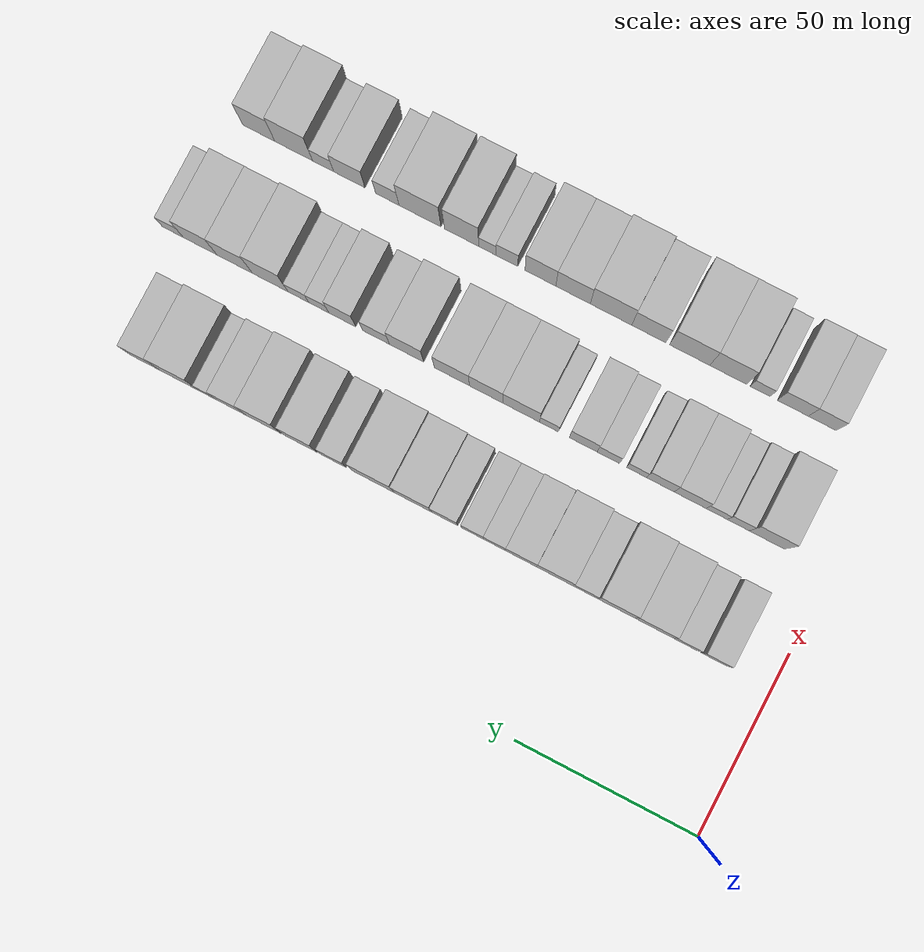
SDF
<sdf version="1.6">
 <world name="default">
  <model name="building_40">
   <static>1</static>
   <pose>50.0000 15.9786 0 0.000000 0.000000 0.000000</pose>
   <link name="link">
    <pose>0 0 7.50 0 0 0</pose>
    <collision name="collision"><geometry><box><size>20.0000 7.0775 15.0000</size></box></geometry></collision>
    <visual name="visual">
     <cast_shadows>0</cast_shadows>
     <geometry><box><size>20.0000 7.0775 15.0000</size></box></geometry>
     <material>
      <script>
       <uri>model://HANNAS_wall/materials/scripts</uri>
       <uri>model://HANNAS_wall/materials/textures</uri>
       <name>vrc/HANNAS_wall</name>
      </script>
     </material>
    </visual>
   </link>
  </model>
  <model name="building_41">
   <static>1</static>
   <pose>50.0000 24.0389 0 0.000000 0.000000 0.000000</pose>
   <link name="link">
    <pose>0 0 7.50 0 0 0</pose>
    <collision name="collision"><geometry><box><size>20.0000 7.0430 15.0000</size></box></geometry></collision>
    <visual name="visual">
     <cast_shadows>0</cast_shadows>
     <geometry><box><size>20.0000 7.0430 15.0000</size></box></geometry>
     <material>
      <script>
       <uri>model://HANNAS_wall/materials/scripts</uri>
       <uri>model://HANNAS_wall/materials/textures</uri>
       <name>vrc/HANNAS_wall</name>
      </script>
     </material>
    </visual>
   </link>
  </model>
  <model name="building_42">
   <static>1</static>
   <pose>50.0000 32.7854 0 0.000000 0.000000 0.000000</pose>
   <link name="link">
    <pose>0 0 10.50 0 0 0</pose>
    <collision name="collision"><geometry><box><size>20.0000 10.4501 21.0000</size></box></geometry></collision>
    <visual name="visual">
     <cast_shadows>0</cast_shadows>
     <geometry><box><size>20.0000 10.4501 21.0000</size></box></geometry>
     <material>
      <script>
       <uri>model://HANNAS_wall/materials/scripts</uri>
       <uri>model://HANNAS_wall/materials/textures</uri>
       <name>vrc/HANNAS_wall</name>
      </script>
     </material>
    </visual>
   </link>
  </model>
  <model name="building_43">
   <static>1</static>
   <pose>50.0000 43.0834 0 0.000000 0.000000 0.000000</pose>
   <link name="link">
    <pose>0 0 12.00 0 0 0</pose>
    <collision name="collision"><geometry><box><size>20.0000 10.1457 24.0000</size></box></geometry></collision>
    <visual name="visual">
     <cast_shadows>0</cast_shadows>
     <geometry><box><size>20.0000 10.1457 24.0000</size></box></geometry>
     <material>
      <script>
       <uri>model://HANNAS_wall/materials/scripts</uri>
       <uri>model://HANNAS_wall/materials/textures</uri>
       <name>vrc/HANNAS_wall</name>
      </script>
     </material>
    </visual>
   </link>
  </model>
  <model name="building_44">
   <static>1</static>
   <pose>50.0000 51.5074 0 0.000000 0.000000 0.000000</pose>
   <link name="link">
    <pose>0 0 7.50 0 0 0</pose>
    <collision name="collision"><geometry><box><size>20.0000 6.7023 15.0000</size></box></geometry></collision>
    <visual name="visual">
     <cast_shadows>0</cast_shadows>
     <geometry><box><size>20.0000 6.7023 15.0000</size></box></geometry>
     <material>
      <script>
       <uri>model://HANNAS_wall/materials/scripts</uri>
       <uri>model://HANNAS_wall/materials/textures</uri>
       <name>vrc/HANNAS_wall</name>
      </script>
     </material>
    </visual>
   </link>
  </model>
  <model name="building_45">
   <static>1</static>
   <pose>50.0000 59.8590 0 0.000000 0.000000 0.000000</pose>
   <link name="link">
    <pose>0 0 10.50 0 0 0</pose>
    <collision name="collision"><geometry><box><size>20.0000 10.0010 21.0000</size></box></geometry></collision>
    <visual name="visual">
     <cast_shadows>0</cast_shadows>
     <geometry><box><size>20.0000 10.0010 21.0000</size></box></geometry>
     <material>
      <script>
       <uri>model://HANNAS_wall/materials/scripts</uri>
       <uri>model://HANNAS_wall/materials/textures</uri>
       <name>vrc/HANNAS_wall</name>
      </script>
     </material>
    </visual>
   </link>
  </model>
  <model name="building_46">
   <static>1</static>
   <pose>50.0000 69.1309 0 0.000000 0.000000 0.000000</pose>
   <link name="link">
    <pose>0 0 9.00 0 0 0</pose>
    <collision name="collision"><geometry><box><size>20.0000 8.5427 18.0000</size></box></geometry></collision>
    <visual name="visual">
     <cast_shadows>0</cast_shadows>
     <geometry><box><size>20.0000 8.5427 18.0000</size></box></geometry>
     <material>
      <script>
       <uri>model://HANNAS_wall/materials/scripts</uri>
       <uri>model://HANNAS_wall/materials/textures</uri>
       <name>vrc/HANNAS_wall</name>
      </script>
     </material>
    </visual>
   </link>
  </model>
  <model name="building_47">
   <static>1</static>
   <pose>50.0000 76.4442 0 0.000000 0.000000 0.000000</pose>
   <link name="link">
    <pose>0 0 7.50 0 0 0</pose>
    <collision name="collision"><geometry><box><size>20.0000 6.0840 15.0000</size></box></geometry></collision>
    <visual name="visual">
     <cast_shadows>0</cast_shadows>
     <geometry><box><size>20.0000 6.0840 15.0000</size></box></geometry>
     <material>
      <script>
       <uri>model://HANNAS_wall/materials/scripts</uri>
       <uri>model://HANNAS_wall/materials/textures</uri>
       <name>vrc/HANNAS_wall</name>
      </script>
     </material>
    </visual>
   </link>
  </model>
  <model name="building_48">
   <static>1</static>
   <pose>50.0000 82.5288 0 0.000000 0.000000 0.000000</pose>
   <link name="link">
    <pose>0 0 7.50 0 0 0</pose>
    <collision name="collision"><geometry><box><size>20.0000 6.0853 15.0000</size></box></geometry></collision>
    <visual name="visual">
     <cast_shadows>0</cast_shadows>
     <geometry><box><size>20.0000 6.0853 15.0000</size></box></geometry>
     <material>
      <script>
       <uri>model://HANNAS_wall/materials/scripts</uri>
       <uri>model://HANNAS_wall/materials/textures</uri>
       <name>vrc/HANNAS_wall</name>
      </script>
     </material>
    </visual>
   </link>
  </model>
  <model name="building_49">
   <static>1</static>
   <pose>50.0000 90.2138 0 0.000000 0.000000 0.000000</pose>
   <link name="link">
    <pose>0 0 9.00 0 0 0</pose>
    <collision name="collision"><geometry><box><size>20.0000 7.2847 18.0000</size></box></geometry></collision>
    <visual name="visual">
     <cast_shadows>0</cast_shadows>
     <geometry><box><size>20.0000 7.2847 18.0000</size></box></geometry>
     <material>
      <script>
       <uri>model://HANNAS_wall/materials/scripts</uri>
       <uri>model://HANNAS_wall/materials/textures</uri>
       <name>vrc/HANNAS_wall</name>
      </script>
     </material>
    </visual>
   </link>
  </model>
  <model name="building_50">
   <static>1</static>
   <pose>50.0000 99.0568 0 0.000000 0.000000 0.000000</pose>
   <link name="link">
    <pose>0 0 10.50 0 0 0</pose>
    <collision name="collision"><geometry><box><size>20.0000 10.4013 21.0000</size></box></geometry></collision>
    <visual name="visual">
     <cast_shadows>0</cast_shadows>
     <geometry><box><size>20.0000 10.4013 21.0000</size></box></geometry>
     <material>
      <script>
       <uri>model://HANNAS_wall/materials/scripts</uri>
       <uri>model://HANNAS_wall/materials/textures</uri>
       <name>vrc/HANNAS_wall</name>
      </script>
     </material>
    </visual>
   </link>
  </model>
  <model name="building_51">
   <static>1</static>
   <pose>50.0000 109.9423 0 0.000000 0.000000 0.000000</pose>
   <link name="link">
    <pose>0 0 12.00 0 0 0</pose>
    <collision name="collision"><geometry><box><size>20.0000 11.3697 24.0000</size></box></geometry></collision>
    <visual name="visual">
     <cast_shadows>0</cast_shadows>
     <geometry><box><size>20.0000 11.3697 24.0000</size></box></geometry>
     <material>
      <script>
       <uri>model://HANNAS_wall/materials/scripts</uri>
       <uri>model://HANNAS_wall/materials/textures</uri>
       <name>vrc/HANNAS_wall</name>
      </script>
     </material>
    </visual>
   </link>
  </model>
  <model name="building_52">
   <static>1</static>
   <pose>50.0000 121.1510 0 0.000000 0.000000 0.000000</pose>
   <link name="link">
    <pose>0 0 7.50 0 0 0</pose>
    <collision name="collision"><geometry><box><size>20.0000 7.0476 15.0000</size></box></geometry></collision>
    <visual name="visual">
     <cast_shadows>0</cast_shadows>
     <geometry><box><size>20.0000 7.0476 15.0000</size></box></geometry>
     <material>
      <script>
       <uri>model://HANNAS_wall/materials/scripts</uri>
       <uri>model://HANNAS_wall/materials/textures</uri>
       <name>vrc/HANNAS_wall</name>
      </script>
     </material>
    </visual>
   </link>
  </model>
  <model name="building_53">
   <static>1</static>
   <pose>50.0000 130.2038 0 0.000000 0.000000 0.000000</pose>
   <link name="link">
    <pose>0 0 10.50 0 0 0</pose>
    <collision name="collision"><geometry><box><size>20.0000 9.0579 21.0000</size></box></geometry></collision>
    <visual name="visual">
     <cast_shadows>0</cast_shadows>
     <geometry><box><size>20.0000 9.0579 21.0000</size></box></geometry>
     <material>
      <script>
       <uri>model://HANNAS_wall/materials/scripts</uri>
       <uri>model://HANNAS_wall/materials/textures</uri>
       <name>vrc/HANNAS_wall</name>
      </script>
     </material>
    </visual>
   </link>
  </model>
  <model name="building_54">
   <static>1</static>
   <pose>50.0000 140.5833 0 0.000000 0.000000 0.000000</pose>
   <link name="link">
    <pose>0 0 12.00 0 0 0</pose>
    <collision name="collision"><geometry><box><size>20.0000 9.7012 24.0000</size></box></geometry></collision>
    <visual name="visual">
     <cast_shadows>0</cast_shadows>
     <geometry><box><size>20.0000 9.7012 24.0000</size></box></geometry>
     <material>
      <script>
       <uri>model://HANNAS_wall/materials/scripts</uri>
       <uri>model://HANNAS_wall/materials/textures</uri>
       <name>vrc/HANNAS_wall</name>
      </script>
     </material>
    </visual>
   </link>
  </model>
  <model name="building_55">
   <static>1</static>
   <pose>50.0000 149.6270 0 0.000000 0.000000 0.000000</pose>
   <link name="link">
    <pose>0 0 9.00 0 0 0</pose>
    <collision name="collision"><geometry><box><size>20.0000 8.3863 18.0000</size></box></geometry></collision>
    <visual name="visual">
     <cast_shadows>0</cast_shadows>
     <geometry><box><size>20.0000 8.3863 18.0000</size></box></geometry>
     <material>
      <script>
       <uri>model://HANNAS_wall/materials/scripts</uri>
       <uri>model://HANNAS_wall/materials/textures</uri>
       <name>vrc/HANNAS_wall</name>
      </script>
     </material>
    </visual>
   </link>
  </model>
  <model name="building_56">
   <static>1</static>
   <pose>50.0000 156.2234 0 0.000000 0.000000 0.000000</pose>
   <link name="link">
    <pose>0 0 6.00 0 0 0</pose>
    <collision name="collision"><geometry><box><size>20.0000 4.8064 12.0000</size></box></geometry></collision>
    <visual name="visual">
     <cast_shadows>0</cast_shadows>
     <geometry><box><size>20.0000 4.8064 12.0000</size></box></geometry>
     <material>
      <script>
       <uri>model://HANNAS_wall/materials/scripts</uri>
       <uri>model://HANNAS_wall/materials/textures</uri>
       <name>vrc/HANNAS_wall</name>
      </script>
     </material>
    </visual>
   </link>
  </model>
  <model name="building_57">
   <static>1</static>
   <pose>50.0000 164.1182 0 0.000000 0.000000 0.000000</pose>
   <link name="link">
    <pose>0 0 12.00 0 0 0</pose>
    <collision name="collision"><geometry><box><size>20.0000 10.9832 24.0000</size></box></geometry></collision>
    <visual name="visual">
     <cast_shadows>0</cast_shadows>
     <geometry><box><size>20.0000 10.9832 24.0000</size></box></geometry>
     <material>
      <script>
       <uri>model://HANNAS_wall/materials/scripts</uri>
       <uri>model://HANNAS_wall/materials/textures</uri>
       <name>vrc/HANNAS_wall</name>
      </script>
     </material>
    </visual>
   </link>
  </model>
  <model name="building_58">
   <static>1</static>
   <pose>50.0000 173.8157 0 0.000000 0.000000 0.000000</pose>
   <link name="link">
    <pose>0 0 9.00 0 0 0</pose>
    <collision name="collision"><geometry><box><size>20.0000 8.4117 18.0000</size></box></geometry></collision>
    <visual name="visual">
     <cast_shadows>0</cast_shadows>
     <geometry><box><size>20.0000 8.4117 18.0000</size></box></geometry>
     <material>
      <script>
       <uri>model://HANNAS_wall/materials/scripts</uri>
       <uri>model://HANNAS_wall/materials/textures</uri>
       <name>vrc/HANNAS_wall</name>
      </script>
     </material>
    </visual>
   </link>
  </model>
  <model name="building_121">
   <static>1</static>
   <pose>82.0000 17.7134 0 0.000000 0.000000 0.000000</pose>
   <link name="link">
    <pose>0 0 12.00 0 0 0</pose>
    <collision name="collision"><geometry><box><size>20.0000 9.7628 24.0000</size></box></geometry></collision>
    <visual name="visual">
     <cast_shadows>0</cast_shadows>
     <geometry><box><size>20.0000 9.7628 24.0000</size></box></geometry>
     <material>
      <script>
       <uri>model://HANNAS_wall/materials/scripts</uri>
       <uri>model://HANNAS_wall/materials/textures</uri>
       <name>vrc/HANNAS_wall</name>
      </script>
     </material>
    </visual>
   </link>
  </model>
  <model name="building_122">
   <static>1</static>
   <pose>82.0000 25.6150 0 0.000000 0.000000 0.000000</pose>
   <link name="link">
    <pose>0 0 7.50 0 0 0</pose>
    <collision name="collision"><geometry><box><size>20.0000 6.0403 15.0000</size></box></geometry></collision>
    <visual name="visual">
     <cast_shadows>0</cast_shadows>
     <geometry><box><size>20.0000 6.0403 15.0000</size></box></geometry>
     <material>
      <script>
       <uri>model://HANNAS_wall/materials/scripts</uri>
       <uri>model://HANNAS_wall/materials/textures</uri>
       <name>vrc/HANNAS_wall</name>
      </script>
     </material>
    </visual>
   </link>
  </model>
  <model name="building_123">
   <static>1</static>
   <pose>82.0000 31.5662 0 0.000000 0.000000 0.000000</pose>
   <link name="link">
    <pose>0 0 6.00 0 0 0</pose>
    <collision name="collision"><geometry><box><size>20.0000 5.8620 12.0000</size></box></geometry></collision>
    <visual name="visual">
     <cast_shadows>0</cast_shadows>
     <geometry><box><size>20.0000 5.8620 12.0000</size></box></geometry>
     <material>
      <script>
       <uri>model://HANNAS_wall/materials/scripts</uri>
       <uri>model://HANNAS_wall/materials/textures</uri>
       <name>vrc/HANNAS_wall</name>
      </script>
     </material>
    </visual>
   </link>
  </model>
  <model name="building_124">
   <static>1</static>
   <pose>82.0000 38.8936 0 0.000000 0.000000 0.000000</pose>
   <link name="link">
    <pose>0 0 9.00 0 0 0</pose>
    <collision name="collision"><geometry><box><size>20.0000 8.7928 18.0000</size></box></geometry></collision>
    <visual name="visual">
     <cast_shadows>0</cast_shadows>
     <geometry><box><size>20.0000 8.7928 18.0000</size></box></geometry>
     <material>
      <script>
       <uri>model://HANNAS_wall/materials/scripts</uri>
       <uri>model://HANNAS_wall/materials/textures</uri>
       <name>vrc/HANNAS_wall</name>
      </script>
     </material>
    </visual>
   </link>
  </model>
  <model name="building_125">
   <static>1</static>
   <pose>82.0000 47.0900 0 0.000000 0.000000 0.000000</pose>
   <link name="link">
    <pose>0 0 9.00 0 0 0</pose>
    <collision name="collision"><geometry><box><size>20.0000 7.5999 18.0000</size></box></geometry></collision>
    <visual name="visual">
     <cast_shadows>0</cast_shadows>
     <geometry><box><size>20.0000 7.5999 18.0000</size></box></geometry>
     <material>
      <script>
       <uri>model://HANNAS_wall/materials/scripts</uri>
       <uri>model://HANNAS_wall/materials/textures</uri>
       <name>vrc/HANNAS_wall</name>
      </script>
     </material>
    </visual>
   </link>
  </model>
  <model name="building_126">
   <static>1</static>
   <pose>82.0000 53.6481 0 0.000000 0.000000 0.000000</pose>
   <link name="link">
    <pose>0 0 6.00 0 0 0</pose>
    <collision name="collision"><geometry><box><size>20.0000 5.5164 12.0000</size></box></geometry></collision>
    <visual name="visual">
     <cast_shadows>0</cast_shadows>
     <geometry><box><size>20.0000 5.5164 12.0000</size></box></geometry>
     <material>
      <script>
       <uri>model://HANNAS_wall/materials/scripts</uri>
       <uri>model://HANNAS_wall/materials/textures</uri>
       <name>vrc/HANNAS_wall</name>
      </script>
     </material>
    </visual>
   </link>
  </model>
  <model name="building_127">
   <static>1</static>
   <pose>82.0000 61.5068 0 0.000000 0.000000 0.000000</pose>
   <link name="link">
    <pose>0 0 7.50 0 0 0</pose>
    <collision name="collision"><geometry><box><size>20.0000 6.2010 15.0000</size></box></geometry></collision>
    <visual name="visual">
     <cast_shadows>0</cast_shadows>
     <geometry><box><size>20.0000 6.2010 15.0000</size></box></geometry>
     <material>
      <script>
       <uri>model://HANNAS_wall/materials/scripts</uri>
       <uri>model://HANNAS_wall/materials/textures</uri>
       <name>vrc/HANNAS_wall</name>
      </script>
     </material>
    </visual>
   </link>
  </model>
  <model name="building_128">
   <static>1</static>
   <pose>82.0000 68.4631 0 0.000000 0.000000 0.000000</pose>
   <link name="link">
    <pose>0 0 9.00 0 0 0</pose>
    <collision name="collision"><geometry><box><size>20.0000 7.7116 18.0000</size></box></geometry></collision>
    <visual name="visual">
     <cast_shadows>0</cast_shadows>
     <geometry><box><size>20.0000 7.7116 18.0000</size></box></geometry>
     <material>
      <script>
       <uri>model://HANNAS_wall/materials/scripts</uri>
       <uri>model://HANNAS_wall/materials/textures</uri>
       <name>vrc/HANNAS_wall</name>
      </script>
     </material>
    </visual>
   </link>
  </model>
  <model name="building_129">
   <static>1</static>
   <pose>82.0000 77.9608 0 0.000000 0.000000 0.000000</pose>
   <link name="link">
    <pose>0 0 6.00 0 0 0</pose>
    <collision name="collision"><geometry><box><size>20.0000 5.2838 12.0000</size></box></geometry></collision>
    <visual name="visual">
     <cast_shadows>0</cast_shadows>
     <geometry><box><size>20.0000 5.2838 12.0000</size></box></geometry>
     <material>
      <script>
       <uri>model://HANNAS_wall/materials/scripts</uri>
       <uri>model://HANNAS_wall/materials/textures</uri>
       <name>vrc/HANNAS_wall</name>
      </script>
     </material>
    </visual>
   </link>
  </model>
  <model name="building_130">
   <static>1</static>
   <pose>82.0000 85.7401 0 0.000000 0.000000 0.000000</pose>
   <link name="link">
    <pose>0 0 10.50 0 0 0</pose>
    <collision name="collision"><geometry><box><size>20.0000 10.2748 21.0000</size></box></geometry></collision>
    <visual name="visual">
     <cast_shadows>0</cast_shadows>
     <geometry><box><size>20.0000 10.2748 21.0000</size></box></geometry>
     <material>
      <script>
       <uri>model://HANNAS_wall/materials/scripts</uri>
       <uri>model://HANNAS_wall/materials/textures</uri>
       <name>vrc/HANNAS_wall</name>
      </script>
     </material>
    </visual>
   </link>
  </model>
  <model name="building_131">
   <static>1</static>
   <pose>82.0000 95.4748 0 0.000000 0.000000 0.000000</pose>
   <link name="link">
    <pose>0 0 10.50 0 0 0</pose>
    <collision name="collision"><geometry><box><size>20.0000 9.1946 21.0000</size></box></geometry></collision>
    <visual name="visual">
     <cast_shadows>0</cast_shadows>
     <geometry><box><size>20.0000 9.1946 21.0000</size></box></geometry>
     <material>
      <script>
       <uri>model://HANNAS_wall/materials/scripts</uri>
       <uri>model://HANNAS_wall/materials/textures</uri>
       <name>vrc/HANNAS_wall</name>
      </script>
     </material>
    </visual>
   </link>
  </model>
  <model name="building_132">
   <static>1</static>
   <pose>82.0000 104.9715 0 0.000000 0.000000 0.000000</pose>
   <link name="link">
    <pose>0 0 10.50 0 0 0</pose>
    <collision name="collision"><geometry><box><size>20.0000 9.7989 21.0000</size></box></geometry></collision>
    <visual name="visual">
     <cast_shadows>0</cast_shadows>
     <geometry><box><size>20.0000 9.7989 21.0000</size></box></geometry>
     <material>
      <script>
       <uri>model://HANNAS_wall/materials/scripts</uri>
       <uri>model://HANNAS_wall/materials/textures</uri>
       <name>vrc/HANNAS_wall</name>
      </script>
     </material>
    </visual>
   </link>
  </model>
  <model name="building_133">
   <static>1</static>
   <pose>82.0000 117.6457 0 0.000000 0.000000 0.000000</pose>
   <link name="link">
    <pose>0 0 10.50 0 0 0</pose>
    <collision name="collision"><geometry><box><size>20.0000 9.5496 21.0000</size></box></geometry></collision>
    <visual name="visual">
     <cast_shadows>0</cast_shadows>
     <geometry><box><size>20.0000 9.5496 21.0000</size></box></geometry>
     <material>
      <script>
       <uri>model://HANNAS_wall/materials/scripts</uri>
       <uri>model://HANNAS_wall/materials/textures</uri>
       <name>vrc/HANNAS_wall</name>
      </script>
     </material>
    </visual>
   </link>
  </model>
  <model name="building_134">
   <static>1</static>
   <pose>82.0000 126.1476 0 0.000000 0.000000 0.000000</pose>
   <link name="link">
    <pose>0 0 7.50 0 0 0</pose>
    <collision name="collision"><geometry><box><size>20.0000 7.4542 15.0000</size></box></geometry></collision>
    <visual name="visual">
     <cast_shadows>0</cast_shadows>
     <geometry><box><size>20.0000 7.4542 15.0000</size></box></geometry>
     <material>
      <script>
       <uri>model://HANNAS_wall/materials/scripts</uri>
       <uri>model://HANNAS_wall/materials/textures</uri>
       <name>vrc/HANNAS_wall</name>
      </script>
     </material>
    </visual>
   </link>
  </model>
  <model name="building_135">
   <static>1</static>
   <pose>82.0000 135.6404 0 0.000000 0.000000 0.000000</pose>
   <link name="link">
    <pose>0 0 9.00 0 0 0</pose>
    <collision name="collision"><geometry><box><size>20.0000 7.5313 18.0000</size></box></geometry></collision>
    <visual name="visual">
     <cast_shadows>0</cast_shadows>
     <geometry><box><size>20.0000 7.5313 18.0000</size></box></geometry>
     <material>
      <script>
       <uri>model://HANNAS_wall/materials/scripts</uri>
       <uri>model://HANNAS_wall/materials/textures</uri>
       <name>vrc/HANNAS_wall</name>
      </script>
     </material>
    </visual>
   </link>
  </model>
  <model name="building_136">
   <static>1</static>
   <pose>82.0000 142.2441 0 0.000000 0.000000 0.000000</pose>
   <link name="link">
    <pose>0 0 6.00 0 0 0</pose>
    <collision name="collision"><geometry><box><size>20.0000 5.6762 12.0000</size></box></geometry></collision>
    <visual name="visual">
     <cast_shadows>0</cast_shadows>
     <geometry><box><size>20.0000 5.6762 12.0000</size></box></geometry>
     <material>
      <script>
       <uri>model://HANNAS_wall/materials/scripts</uri>
       <uri>model://HANNAS_wall/materials/textures</uri>
       <name>vrc/HANNAS_wall</name>
      </script>
     </material>
    </visual>
   </link>
  </model>
  <model name="building_137">
   <static>1</static>
   <pose>82.0000 147.9988 0 0.000000 0.000000 0.000000</pose>
   <link name="link">
    <pose>0 0 6.00 0 0 0</pose>
    <collision name="collision"><geometry><box><size>20.0000 5.8333 12.0000</size></box></geometry></collision>
    <visual name="visual">
     <cast_shadows>0</cast_shadows>
     <geometry><box><size>20.0000 5.8333 12.0000</size></box></geometry>
     <material>
      <script>
       <uri>model://HANNAS_wall/materials/scripts</uri>
       <uri>model://HANNAS_wall/materials/textures</uri>
       <name>vrc/HANNAS_wall</name>
      </script>
     </material>
    </visual>
   </link>
  </model>
  <model name="building_138">
   <static>1</static>
   <pose>82.0000 155.9293 0 0.000000 0.000000 0.000000</pose>
   <link name="link">
    <pose>0 0 12.00 0 0 0</pose>
    <collision name="collision"><geometry><box><size>20.0000 10.0276 24.0000</size></box></geometry></collision>
    <visual name="visual">
     <cast_shadows>0</cast_shadows>
     <geometry><box><size>20.0000 10.0276 24.0000</size></box></geometry>
     <material>
      <script>
       <uri>model://HANNAS_wall/materials/scripts</uri>
       <uri>model://HANNAS_wall/materials/textures</uri>
       <name>vrc/HANNAS_wall</name>
      </script>
     </material>
    </visual>
   </link>
  </model>
  <model name="building_139">
   <static>1</static>
   <pose>82.0000 165.9415 0 0.000000 0.000000 0.000000</pose>
   <link name="link">
    <pose>0 0 10.50 0 0 0</pose>
    <collision name="collision"><geometry><box><size>20.0000 9.9969 21.0000</size></box></geometry></collision>
    <visual name="visual">
     <cast_shadows>0</cast_shadows>
     <geometry><box><size>20.0000 9.9969 21.0000</size></box></geometry>
     <material>
      <script>
       <uri>model://HANNAS_wall/materials/scripts</uri>
       <uri>model://HANNAS_wall/materials/textures</uri>
       <name>vrc/HANNAS_wall</name>
      </script>
     </material>
    </visual>
   </link>
  </model>
  <model name="building_140">
   <static>1</static>
   <pose>82.0000 175.6808 0 0.000000 0.000000 0.000000</pose>
   <link name="link">
    <pose>0 0 10.50 0 0 0</pose>
    <collision name="collision"><geometry><box><size>20.0000 9.4818 21.0000</size></box></geometry></collision>
    <visual name="visual">
     <cast_shadows>0</cast_shadows>
     <geometry><box><size>20.0000 9.4818 21.0000</size></box></geometry>
     <material>
      <script>
       <uri>model://HANNAS_wall/materials/scripts</uri>
       <uri>model://HANNAS_wall/materials/textures</uri>
       <name>vrc/HANNAS_wall</name>
      </script>
     </material>
    </visual>
   </link>
  </model>
  <model name="building_141">
   <static>1</static>
   <pose>82.0000 183.4076 0 0.000000 0.000000 0.000000</pose>
   <link name="link">
    <pose>0 0 6.00 0 0 0</pose>
    <collision name="collision"><geometry><box><size>20.0000 5.9719 12.0000</size></box></geometry></collision>
    <visual name="visual">
     <cast_shadows>0</cast_shadows>
     <geometry><box><size>20.0000 5.9719 12.0000</size></box></geometry>
     <material>
      <script>
       <uri>model://HANNAS_wall/materials/scripts</uri>
       <uri>model://HANNAS_wall/materials/textures</uri>
       <name>vrc/HANNAS_wall</name>
      </script>
     </material>
    </visual>
   </link>
  </model>
  <model name="building_195">
   <static>1</static>
   <pose>114.0000 18.5535 0 0.000000 0.000000 0.000000</pose>
   <link name="link">
    <pose>0 0 9.00 0 0 0</pose>
    <collision name="collision"><geometry><box><size>20.0000 7.6872 18.0000</size></box></geometry></collision>
    <visual name="visual">
     <cast_shadows>0</cast_shadows>
     <geometry><box><size>20.0000 7.6872 18.0000</size></box></geometry>
     <material>
      <script>
       <uri>model://HANNAS_wall/materials/scripts</uri>
       <uri>model://HANNAS_wall/materials/textures</uri>
       <name>vrc/HANNAS_wall</name>
      </script>
     </material>
    </visual>
   </link>
  </model>
  <model name="building_196">
   <static>1</static>
   <pose>114.0000 26.6757 0 0.000000 0.000000 0.000000</pose>
   <link name="link">
    <pose>0 0 9.00 0 0 0</pose>
    <collision name="collision"><geometry><box><size>20.0000 8.5570 18.0000</size></box></geometry></collision>
    <visual name="visual">
     <cast_shadows>0</cast_shadows>
     <geometry><box><size>20.0000 8.5570 18.0000</size></box></geometry>
     <material>
      <script>
       <uri>model://HANNAS_wall/materials/scripts</uri>
       <uri>model://HANNAS_wall/materials/textures</uri>
       <name>vrc/HANNAS_wall</name>
      </script>
     </material>
    </visual>
   </link>
  </model>
  <model name="building_197">
   <static>1</static>
   <pose>114.0000 35.7107 0 0.000000 0.000000 0.000000</pose>
   <link name="link">
    <pose>0 0 6.00 0 0 0</pose>
    <collision name="collision"><geometry><box><size>20.0000 5.5129 12.0000</size></box></geometry></collision>
    <visual name="visual">
     <cast_shadows>0</cast_shadows>
     <geometry><box><size>20.0000 5.5129 12.0000</size></box></geometry>
     <material>
      <script>
       <uri>model://HANNAS_wall/materials/scripts</uri>
       <uri>model://HANNAS_wall/materials/textures</uri>
       <name>vrc/HANNAS_wall</name>
      </script>
     </material>
    </visual>
   </link>
  </model>
  <model name="building_198">
   <static>1</static>
   <pose>114.0000 44.5923 0 0.000000 0.000000 0.000000</pose>
   <link name="link">
    <pose>0 0 12.00 0 0 0</pose>
    <collision name="collision"><geometry><box><size>20.0000 10.2503 24.0000</size></box></geometry></collision>
    <visual name="visual">
     <cast_shadows>0</cast_shadows>
     <geometry><box><size>20.0000 10.2503 24.0000</size></box></geometry>
     <material>
      <script>
       <uri>model://HANNAS_wall/materials/scripts</uri>
       <uri>model://HANNAS_wall/materials/textures</uri>
       <name>vrc/HANNAS_wall</name>
      </script>
     </material>
    </visual>
   </link>
  </model>
  <model name="building_199">
   <static>1</static>
   <pose>114.0000 55.3177 0 0.000000 0.000000 0.000000</pose>
   <link name="link">
    <pose>0 0 12.00 0 0 0</pose>
    <collision name="collision"><geometry><box><size>20.0000 11.2005 24.0000</size></box></geometry></collision>
    <visual name="visual">
     <cast_shadows>0</cast_shadows>
     <geometry><box><size>20.0000 11.2005 24.0000</size></box></geometry>
     <material>
      <script>
       <uri>model://HANNAS_wall/materials/scripts</uri>
       <uri>model://HANNAS_wall/materials/textures</uri>
       <name>vrc/HANNAS_wall</name>
      </script>
     </material>
    </visual>
   </link>
  </model>
  <model name="building_200">
   <static>1</static>
   <pose>114.0000 66.6856 0 0.000000 0.000000 0.000000</pose>
   <link name="link">
    <pose>0 0 10.50 0 0 0</pose>
    <collision name="collision"><geometry><box><size>20.0000 9.5353 21.0000</size></box></geometry></collision>
    <visual name="visual">
     <cast_shadows>0</cast_shadows>
     <geometry><box><size>20.0000 9.5353 21.0000</size></box></geometry>
     <material>
      <script>
       <uri>model://HANNAS_wall/materials/scripts</uri>
       <uri>model://HANNAS_wall/materials/textures</uri>
       <name>vrc/HANNAS_wall</name>
      </script>
     </material>
    </visual>
   </link>
  </model>
  <model name="building_201">
   <static>1</static>
   <pose>114.0000 77.2317 0 0.000000 0.000000 0.000000</pose>
   <link name="link">
    <pose>0 0 12.00 0 0 0</pose>
    <collision name="collision"><geometry><box><size>20.0000 11.5570 24.0000</size></box></geometry></collision>
    <visual name="visual">
     <cast_shadows>0</cast_shadows>
     <geometry><box><size>20.0000 11.5570 24.0000</size></box></geometry>
     <material>
      <script>
       <uri>model://HANNAS_wall/materials/scripts</uri>
       <uri>model://HANNAS_wall/materials/textures</uri>
       <name>vrc/HANNAS_wall</name>
      </script>
     </material>
    </visual>
   </link>
  </model>
  <model name="building_202">
   <static>1</static>
   <pose>114.0000 87.8301 0 0.000000 0.000000 0.000000</pose>
   <link name="link">
    <pose>0 0 10.50 0 0 0</pose>
    <collision name="collision"><geometry><box><size>20.0000 9.6398 21.0000</size></box></geometry></collision>
    <visual name="visual">
     <cast_shadows>0</cast_shadows>
     <geometry><box><size>20.0000 9.6398 21.0000</size></box></geometry>
     <material>
      <script>
       <uri>model://HANNAS_wall/materials/scripts</uri>
       <uri>model://HANNAS_wall/materials/textures</uri>
       <name>vrc/HANNAS_wall</name>
      </script>
     </material>
    </visual>
   </link>
  </model>
  <model name="building_203">
   <static>1</static>
   <pose>114.0000 96.9592 0 0.000000 0.000000 0.000000</pose>
   <link name="link">
    <pose>0 0 10.50 0 0 0</pose>
    <collision name="collision"><geometry><box><size>20.0000 8.6185 21.0000</size></box></geometry></collision>
    <visual name="visual">
     <cast_shadows>0</cast_shadows>
     <geometry><box><size>20.0000 8.6185 21.0000</size></box></geometry>
     <material>
      <script>
       <uri>model://HANNAS_wall/materials/scripts</uri>
       <uri>model://HANNAS_wall/materials/textures</uri>
       <name>vrc/HANNAS_wall</name>
      </script>
     </material>
    </visual>
   </link>
  </model>
  <model name="building_204">
   <static>1</static>
   <pose>114.0000 106.3080 0 0.000000 0.000000 0.000000</pose>
   <link name="link">
    <pose>0 0 7.50 0 0 0</pose>
    <collision name="collision"><geometry><box><size>20.0000 6.0790 15.0000</size></box></geometry></collision>
    <visual name="visual">
     <cast_shadows>0</cast_shadows>
     <geometry><box><size>20.0000 6.0790 15.0000</size></box></geometry>
     <material>
      <script>
       <uri>model://HANNAS_wall/materials/scripts</uri>
       <uri>model://HANNAS_wall/materials/textures</uri>
       <name>vrc/HANNAS_wall</name>
      </script>
     </material>
    </visual>
   </link>
  </model>
  <model name="building_205">
   <static>1</static>
   <pose>114.0000 111.7734 0 0.000000 0.000000 0.000000</pose>
   <link name="link">
    <pose>0 0 6.00 0 0 0</pose>
    <collision name="collision"><geometry><box><size>20.0000 4.8517 12.0000</size></box></geometry></collision>
    <visual name="visual">
     <cast_shadows>0</cast_shadows>
     <geometry><box><size>20.0000 4.8517 12.0000</size></box></geometry>
     <material>
      <script>
       <uri>model://HANNAS_wall/materials/scripts</uri>
       <uri>model://HANNAS_wall/materials/textures</uri>
       <name>vrc/HANNAS_wall</name>
      </script>
     </material>
    </visual>
   </link>
  </model>
  <model name="building_206">
   <static>1</static>
   <pose>114.0000 119.0199 0 0.000000 0.000000 0.000000</pose>
   <link name="link">
    <pose>0 0 12.00 0 0 0</pose>
    <collision name="collision"><geometry><box><size>20.0000 9.6413 24.0000</size></box></geometry></collision>
    <visual name="visual">
     <cast_shadows>0</cast_shadows>
     <geometry><box><size>20.0000 9.6413 24.0000</size></box></geometry>
     <material>
      <script>
       <uri>model://HANNAS_wall/materials/scripts</uri>
       <uri>model://HANNAS_wall/materials/textures</uri>
       <name>vrc/HANNAS_wall</name>
      </script>
     </material>
    </visual>
   </link>
  </model>
  <model name="building_207">
   <static>1</static>
   <pose>114.0000 130.7506 0 0.000000 0.000000 0.000000</pose>
   <link name="link">
    <pose>0 0 12.00 0 0 0</pose>
    <collision name="collision"><geometry><box><size>20.0000 11.8201 24.0000</size></box></geometry></collision>
    <visual name="visual">
     <cast_shadows>0</cast_shadows>
     <geometry><box><size>20.0000 11.8201 24.0000</size></box></geometry>
     <material>
      <script>
       <uri>model://HANNAS_wall/materials/scripts</uri>
       <uri>model://HANNAS_wall/materials/textures</uri>
       <name>vrc/HANNAS_wall</name>
      </script>
     </material>
    </visual>
   </link>
  </model>
  <model name="building_208">
   <static>1</static>
   <pose>114.0000 139.9495 0 0.000000 0.000000 0.000000</pose>
   <link name="link">
    <pose>0 0 7.50 0 0 0</pose>
    <collision name="collision"><geometry><box><size>20.0000 6.5778 15.0000</size></box></geometry></collision>
    <visual name="visual">
     <cast_shadows>0</cast_shadows>
     <geometry><box><size>20.0000 6.5778 15.0000</size></box></geometry>
     <material>
      <script>
       <uri>model://HANNAS_wall/materials/scripts</uri>
       <uri>model://HANNAS_wall/materials/textures</uri>
       <name>vrc/HANNAS_wall</name>
      </script>
     </material>
    </visual>
   </link>
  </model>
  <model name="building_209">
   <static>1</static>
   <pose>114.0000 150.6554 0 0.000000 0.000000 0.000000</pose>
   <link name="link">
    <pose>0 0 9.00 0 0 0</pose>
    <collision name="collision"><geometry><box><size>20.0000 8.8339 18.0000</size></box></geometry></collision>
    <visual name="visual">
     <cast_shadows>0</cast_shadows>
     <geometry><box><size>20.0000 8.8339 18.0000</size></box></geometry>
     <material>
      <script>
       <uri>model://HANNAS_wall/materials/scripts</uri>
       <uri>model://HANNAS_wall/materials/textures</uri>
       <name>vrc/HANNAS_wall</name>
      </script>
     </material>
    </visual>
   </link>
  </model>
  <model name="building_210">
   <static>1</static>
   <pose>114.0000 158.0553 0 0.000000 0.000000 0.000000</pose>
   <link name="link">
    <pose>0 0 6.00 0 0 0</pose>
    <collision name="collision"><geometry><box><size>20.0000 5.9661 12.0000</size></box></geometry></collision>
    <visual name="visual">
     <cast_shadows>0</cast_shadows>
     <geometry><box><size>20.0000 5.9661 12.0000</size></box></geometry>
     <material>
      <script>
       <uri>model://HANNAS_wall/materials/scripts</uri>
       <uri>model://HANNAS_wall/materials/textures</uri>
       <name>vrc/HANNAS_wall</name>
      </script>
     </material>
    </visual>
   </link>
  </model>
  <model name="building_211">
   <static>1</static>
   <pose>114.0000 166.3642 0 0.000000 0.000000 0.000000</pose>
   <link name="link">
    <pose>0 0 12.00 0 0 0</pose>
    <collision name="collision"><geometry><box><size>20.0000 10.6517 24.0000</size></box></geometry></collision>
    <visual name="visual">
     <cast_shadows>0</cast_shadows>
     <geometry><box><size>20.0000 10.6517 24.0000</size></box></geometry>
     <material>
      <script>
       <uri>model://HANNAS_wall/materials/scripts</uri>
       <uri>model://HANNAS_wall/materials/textures</uri>
       <name>vrc/HANNAS_wall</name>
      </script>
     </material>
    </visual>
   </link>
  </model>
  <model name="building_212">
   <static>1</static>
   <pose>114.0000 176.2223 0 0.000000 0.000000 0.000000</pose>
   <link name="link">
    <pose>0 0 10.50 0 0 0</pose>
    <collision name="collision"><geometry><box><size>20.0000 9.0646 21.0000</size></box></geometry></collision>
    <visual name="visual">
     <cast_shadows>0</cast_shadows>
     <geometry><box><size>20.0000 9.0646 21.0000</size></box></geometry>
     <material>
      <script>
       <uri>model://HANNAS_wall/materials/scripts</uri>
       <uri>model://HANNAS_wall/materials/textures</uri>
       <name>vrc/HANNAS_wall</name>
      </script>
     </material>
    </visual>
   </link>
  </model>
 </world>
</sdf>
